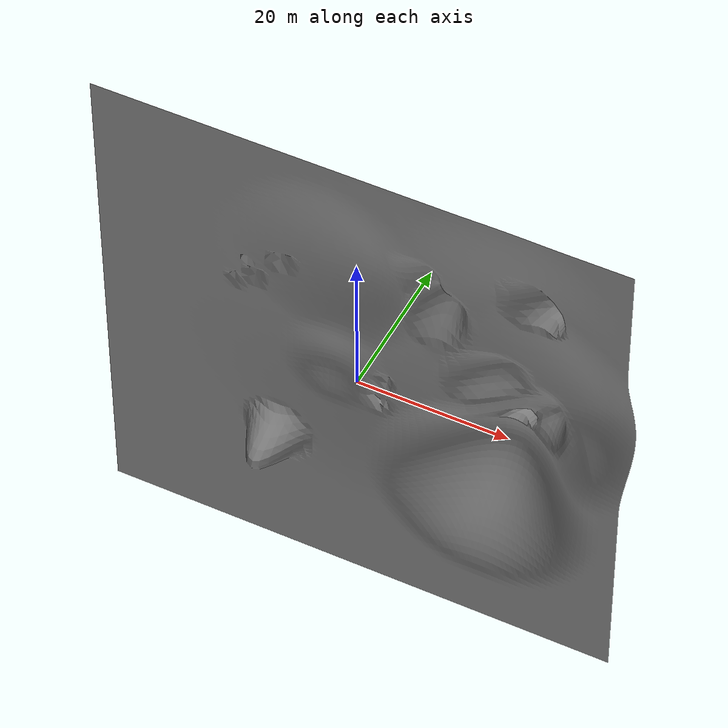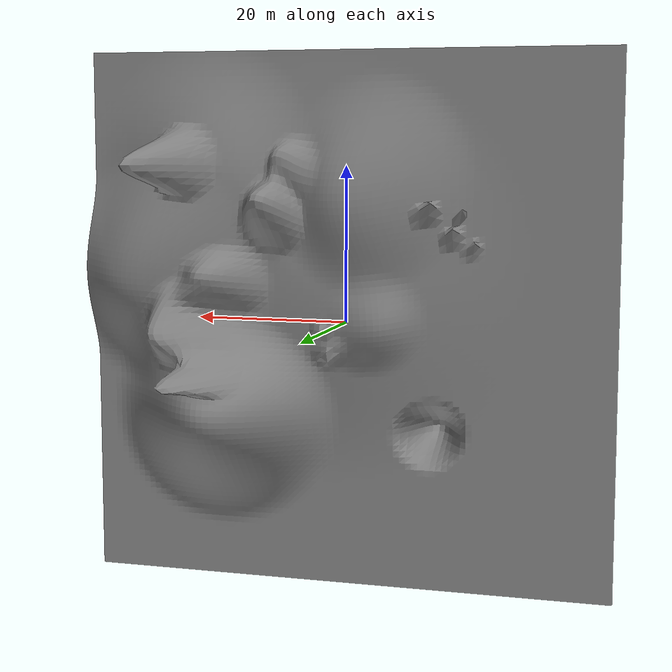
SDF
<?xml version="1.0" ?>
<sdf version="1.5">
    <model name="ground_plane">
        <static>true</static>
        <link name="link">
            <visual name="visual">
                <geometry>
                    <mesh>
                        <uri>
                            model://TerrainTest.obj
                        </uri>
                    </mesh>
                </geometry>
                <material>
                    <ambient>0.5 0.5 0.5 1</ambient>
                    <diffuse>0.5 0.5 0.5 1</diffuse>
                    <specular>1 1 1 1</specular>
                  </material>
            </visual>
            <collision name="collision">
                <geometry>
                    <mesh>
                        <uri>
                            model://TerrainTest.obj
                        </uri>
                    </mesh>
                </geometry>
            </collision>
        </link>
    </model>
</sdf>
